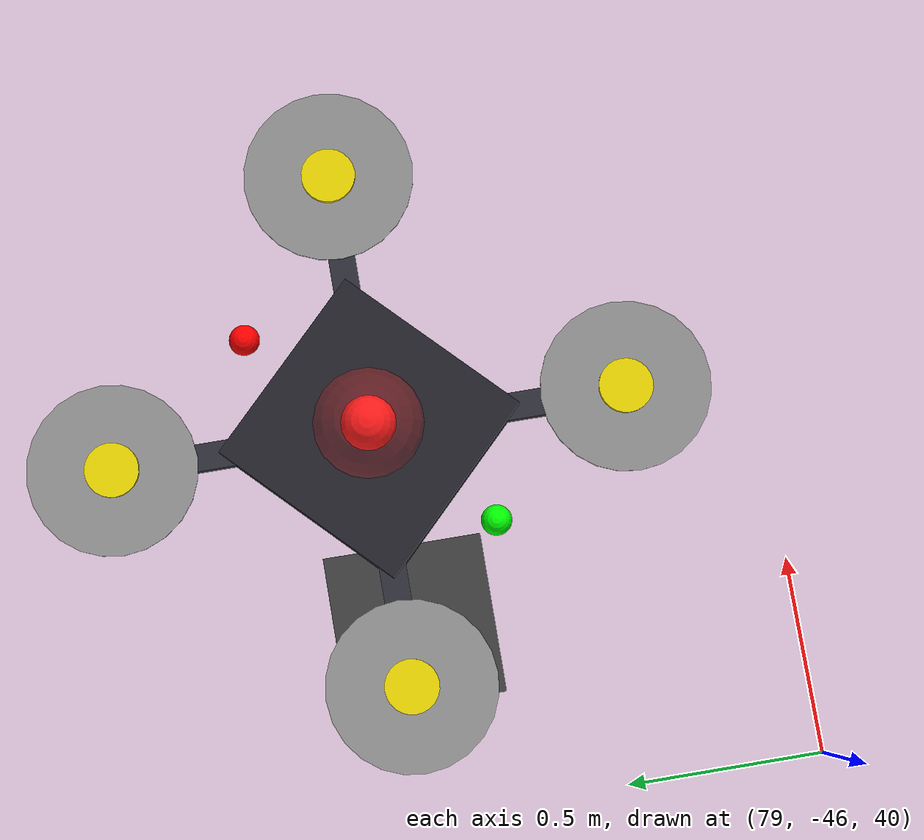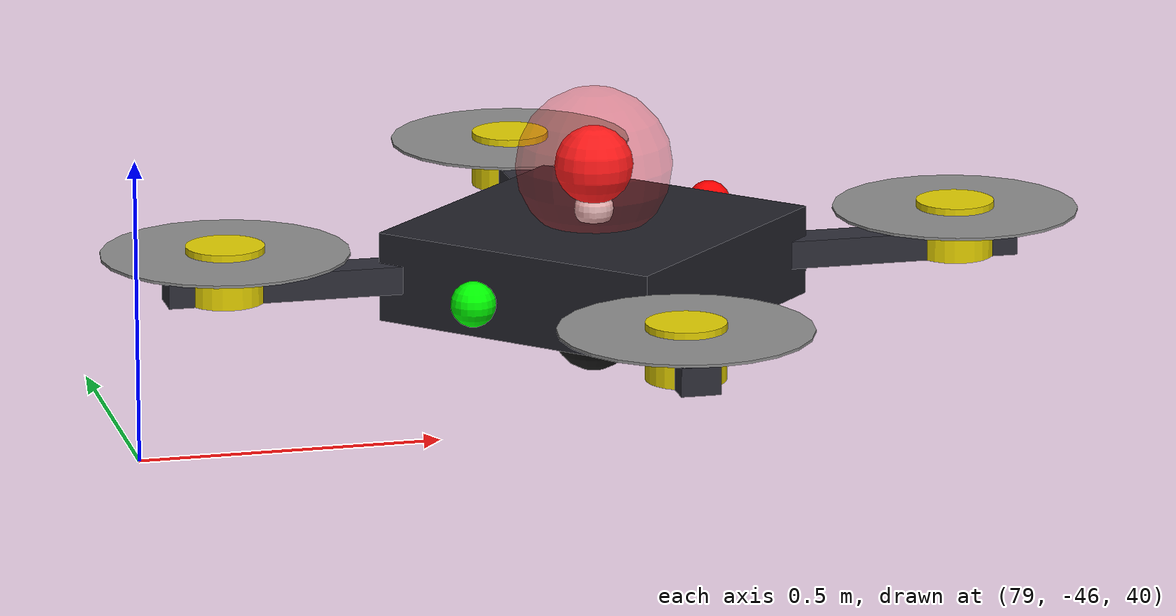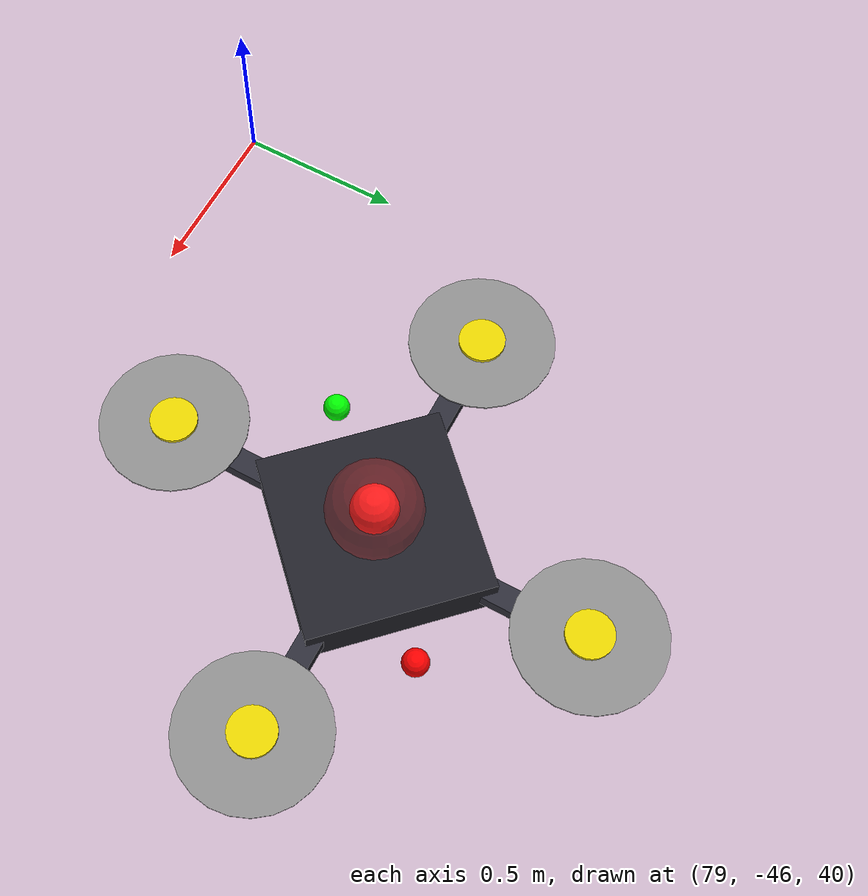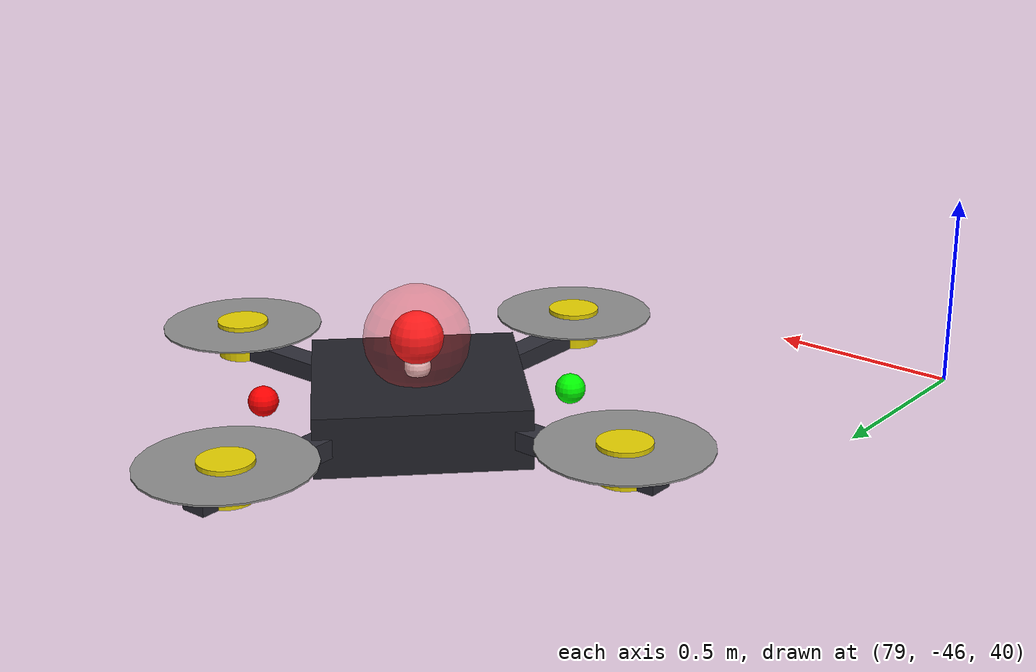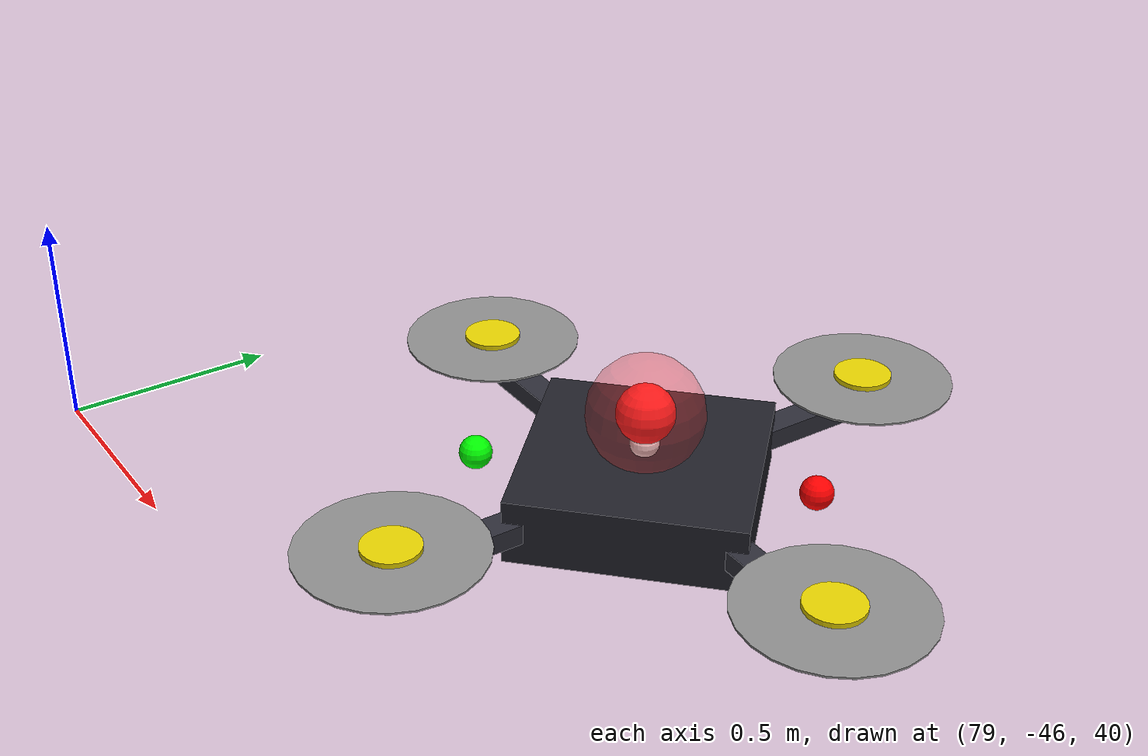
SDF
<sdf version="1.9">
 <world name="lng_terminal">
  <model name="ground">
   <static>true</static>
   <pose>0 0 -0.05 0 0 0</pose>
   <link name="l">
    <collision name="c"><geometry><box><size>2000 2000 0.1</size></box></geometry></collision>
    <visual name="v">
     <geometry><box><size>2000 2000 0.1</size></box></geometry>
     <material>
      <ambient>0.18 0.18 0.18 1</ambient>
      <diffuse>0.24 0.24 0.24 1</diffuse>
      <specular>0.03 0.03 0.03 1</specular>
      <pbr><metal><roughness>0.96</roughness><metalness>0.0</metalness></metal></pbr>
     </material>
    </visual>
   </link>
  </model>
  <model name="drone_d1">
   <static>false</static>
   <pose>80 -45 40 0 0 -2.3562</pose>
   <link name="base_link">
    <gravity>false</gravity>
    <inertial>
     <mass>1.0</mass>
     <inertia><ixx>0.05</ixx><iyy>0.05</iyy><izz>0.05</izz><ixy>0</ixy><ixz>0</ixz><iyz>0</iyz></inertia>
    </inertial>
    <visual name="frame">
     <geometry><box><size>0.55 0.55 0.16</size></box></geometry>
     <material>
      <ambient>0.08 0.08 0.10 1</ambient>
      <diffuse>0.13 0.13 0.16 1</diffuse>
      <pbr><metal><roughness>0.24</roughness><metalness>0.82</metalness></metal></pbr>
     </material>
    </visual>
    <visual name="arm_ne">
     <pose>0.27 0.27 0 0 0 0.785</pose>
     <geometry><box><size>0.78 0.07 0.05</size></box></geometry>
     <material><ambient>0.12 0.12 0.14 1</ambient><diffuse>0.18 0.18 0.22 1</diffuse></material>
    </visual>
    <visual name="arm_nw">
     <pose>-0.27 0.27 0 0 0 -0.785</pose>
     <geometry><box><size>0.78 0.07 0.05</size></box></geometry>
     <material><ambient>0.12 0.12 0.14 1</ambient><diffuse>0.18 0.18 0.22 1</diffuse></material>
    </visual>
    <visual name="arm_sw">
     <pose>-0.27 -0.27 0 0 0 0.785</pose>
     <geometry><box><size>0.78 0.07 0.05</size></box></geometry>
     <material><ambient>0.12 0.12 0.14 1</ambient><diffuse>0.18 0.18 0.22 1</diffuse></material>
    </visual>
    <visual name="arm_se">
     <pose>0.27 -0.27 0 0 0 -0.785</pose>
     <geometry><box><size>0.78 0.07 0.05</size></box></geometry>
     <material><ambient>0.12 0.12 0.14 1</ambient><diffuse>0.18 0.18 0.22 1</diffuse></material>
    </visual>
    <visual name="prop_ne">
     <pose>0.47 0.47 0.06 0 0 0</pose>
     <geometry><cylinder><radius>0.22</radius><length>0.005</length></cylinder></geometry>
     <material>
      <ambient>0.40 0.40 0.40 1</ambient>
      <diffuse>0.55 0.55 0.55 1</diffuse>
      <transparency>0.5</transparency>
     </material>
    </visual>
    <visual name="prop_nw">
     <pose>-0.47 0.47 0.06 0 0 0</pose>
     <geometry><cylinder><radius>0.22</radius><length>0.005</length></cylinder></geometry>
     <material>
      <ambient>0.40 0.40 0.40 1</ambient>
      <diffuse>0.55 0.55 0.55 1</diffuse>
      <transparency>0.5</transparency>
     </material>
    </visual>
    <visual name="prop_sw">
     <pose>-0.47 -0.47 0.06 0 0 0</pose>
     <geometry><cylinder><radius>0.22</radius><length>0.005</length></cylinder></geometry>
     <material>
      <ambient>0.40 0.40 0.40 1</ambient>
      <diffuse>0.55 0.55 0.55 1</diffuse>
      <transparency>0.5</transparency>
     </material>
    </visual>
    <visual name="prop_se">
     <pose>0.47 -0.47 0.06 0 0 0</pose>
     <geometry><cylinder><radius>0.22</radius><length>0.005</length></cylinder></geometry>
     <material>
      <ambient>0.40 0.40 0.40 1</ambient>
      <diffuse>0.55 0.55 0.55 1</diffuse>
      <transparency>0.5</transparency>
     </material>
    </visual>
    <visual name="m_ne">
     <pose>0.47 0.47 0.025 0 0 0</pose>
     <geometry><cylinder><radius>0.07</radius><length>0.10</length></cylinder></geometry>
     <material><ambient>0.72 0.66 0.0 1</ambient><diffuse>0.90 0.82 0.0 1</diffuse></material>
    </visual>
    <visual name="m_nw">
     <pose>-0.47 0.47 0.025 0 0 0</pose>
     <geometry><cylinder><radius>0.07</radius><length>0.10</length></cylinder></geometry>
     <material><ambient>0.72 0.66 0.0 1</ambient><diffuse>0.90 0.82 0.0 1</diffuse></material>
    </visual>
    <visual name="m_sw">
     <pose>-0.47 -0.47 0.025 0 0 0</pose>
     <geometry><cylinder><radius>0.07</radius><length>0.10</length></cylinder></geometry>
     <material><ambient>0.72 0.66 0.0 1</ambient><diffuse>0.90 0.82 0.0 1</diffuse></material>
    </visual>
    <visual name="m_se">
     <pose>0.47 -0.47 0.025 0 0 0</pose>
     <geometry><cylinder><radius>0.07</radius><length>0.10</length></cylinder></geometry>
     <material><ambient>0.72 0.66 0.0 1</ambient><diffuse>0.90 0.82 0.0 1</diffuse></material>
    </visual>
    <visual name="gimbal">
     <pose>0 0 -0.12 0 0 0</pose>
     <geometry><sphere><radius>0.075</radius></sphere></geometry>
     <material>
      <ambient>0.05 0.05 0.05 1</ambient>
      <diffuse>0.08 0.08 0.08 1</diffuse>
      <pbr><metal><roughness>0.10</roughness><metalness>0.0</metalness></metal></pbr>
     </material>
    </visual>
    <visual name="nav_red">
     <pose>-0.40 0 0.02 0 0 0</pose>
     <geometry><sphere><radius>0.04</radius></sphere></geometry>
     <material>
      <ambient>0.9 0.0 0.0 1</ambient>
      <diffuse>1.0 0.0 0.0 1</diffuse>
      <emissive>0.85 0.0 0.0 1</emissive>
     </material>
    </visual>
    <visual name="nav_green">
     <pose>0.40 0 0.02 0 0 0</pose>
     <geometry><sphere><radius>0.04</radius></sphere></geometry>
     <material>
      <ambient>0.0 0.9 0.0 1</ambient>
      <diffuse>0.0 1.0 0.0 1</diffuse>
      <emissive>0.0 0.85 0.0 1</emissive>
     </material>
    </visual>
    <visual name="nav_white">
     <pose>0 0 0.10 0 0 0</pose>
     <geometry><sphere><radius>0.035</radius></sphere></geometry>
     <material>
      <ambient>1.0 1.0 1.0 1</ambient>
      <diffuse>1.0 1.0 1.0 1</diffuse>
      <emissive>0.9 0.9 0.9 1</emissive>
     </material>
    </visual>
    <visual name="beacon">
     <pose>0 0 0.18 0 0 0</pose>
     <geometry><sphere><radius>0.07</radius></sphere></geometry>
     <material>
      <ambient>1.0 0.05 0.05 1</ambient>
      <diffuse>1.0 0.10 0.10 1</diffuse>
      <emissive>1.0 0.0 0.0 1</emissive>
     </material>
    </visual>
    <visual name="beacon_glow">
     <pose>0 0 0.18 0 0 0</pose>
     <geometry><sphere><radius>0.14</radius></sphere></geometry>
     <transparency>0.7</transparency>
     <material>
      <ambient>1.0 0.1 0.1 0.3</ambient>
      <diffuse>1.0 0.15 0.15 0.3</diffuse>
      <emissive>0.8 0.0 0.0 1</emissive>
     </material>
    </visual>
    <collision name="c"><geometry><box><size>0.55 0.55 0.16</size></box></geometry></collision>
    <sensor name="drone_cam_main" type="camera">
     <pose>0 0 0.20 0 0.35 3.14159</pose>
     <update_rate>10</update_rate>
     <camera>
      <horizontal_fov>1.0472</horizontal_fov>
      <image><width>640</width><height>480</height><format>R8G8B8</format></image>
      <clip><near>0.5</near><far>400</far></clip>
      <noise><type>gaussian</type><mean>0</mean><stddev>0.002</stddev></noise>
     </camera>
    </sensor>
    <sensor name="drone_cam_back" type="camera">
     <pose>0 0 0.20 0 0.45 0</pose>
     <update_rate>10</update_rate>
     <camera>
      <horizontal_fov>1.0472</horizontal_fov>
      <image><width>640</width><height>480</height><format>R8G8B8</format></image>
      <clip><near>0.5</near><far>400</far></clip>
      <noise><type>gaussian</type><mean>0</mean><stddev>0.002</stddev></noise>
     </camera>
    </sensor>
    <sensor name="drone_cam_wide" type="camera">
     <pose>0 0 0.20 0 0.55 0</pose>
     <update_rate>5</update_rate>
     <camera>
      <horizontal_fov>1.8</horizontal_fov>
      <image><width>640</width><height>480</height><format>R8G8B8</format></image>
      <clip><near>0.5</near><far>400</far></clip>
      <noise><type>gaussian</type><mean>0</mean><stddev>0.002</stddev></noise>
     </camera>
    </sensor>
    <sensor name="drone_cam_track" type="camera">
     <pose>0 0 0.20 0 0.60 0</pose>
     <update_rate>5</update_rate>
     <camera>
      <horizontal_fov>0.5</horizontal_fov>
      <image><width>640</width><height>480</height><format>R8G8B8</format></image>
      <clip><near>0.5</near><far>400</far></clip>
      <noise><type>gaussian</type><mean>0</mean><stddev>0.002</stddev></noise>
     </camera>
    </sensor>
   </link>
  </model>
 </world>
</sdf>
